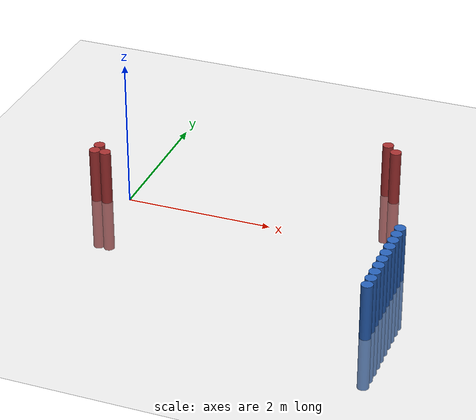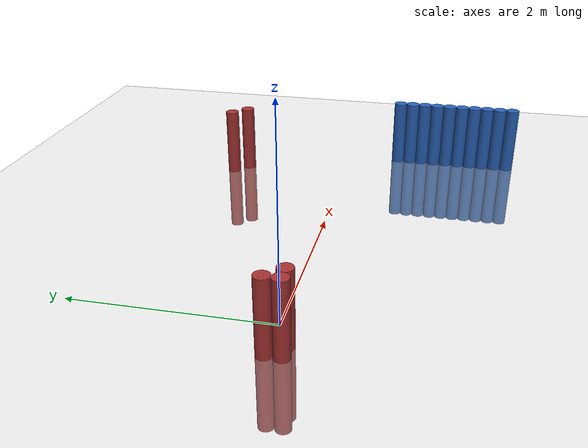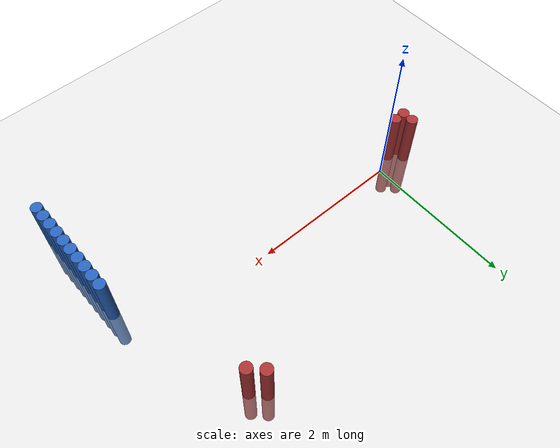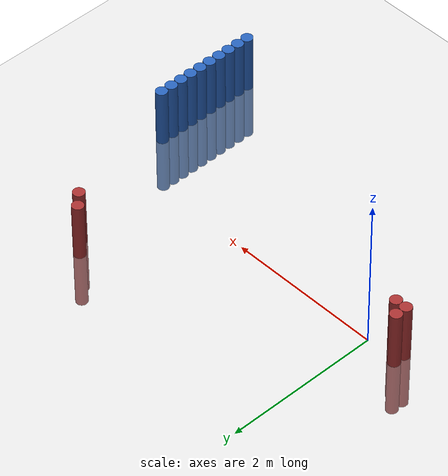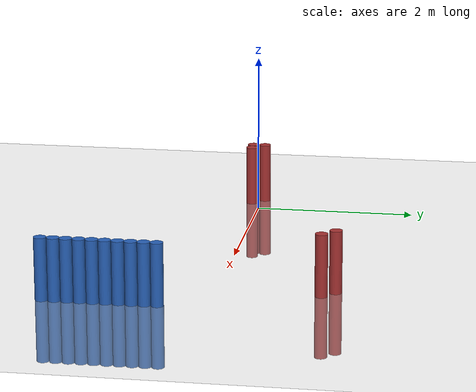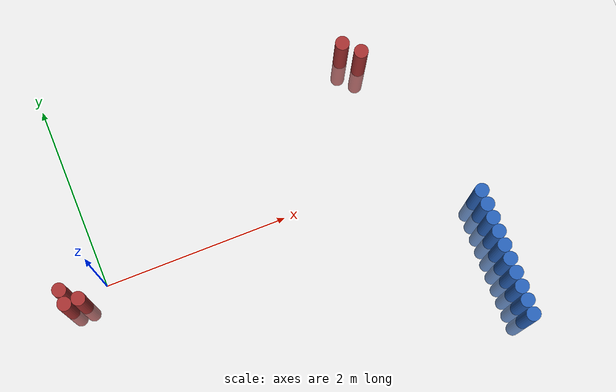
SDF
<sdf version="1.6">
 <world name="default">
  <model name="ground_plane">
   <static>1</static>
   <link name="link">
    <collision name="collision">
     <geometry><plane><normal>0 0 1</normal><size>100 100</size></plane></geometry>
     <surface><friction><ode><mu>100</mu><mu2>50</mu2></ode></friction></surface>
    </collision>
    <visual name="visual">
     <cast_shadows>0</cast_shadows>
     <geometry><plane><normal>0 0 1</normal><size>100 100</size></plane></geometry>
     <material>
      <script><uri>file://media/materials/scripts/gazebo.material</uri><name>Gazebo/Grey</name></script>
     </material>
    </visual>
   </link>
  </model>
  <model name="unit_cylinder_90">
   <static>1</static>
   <pose>3.925000 -1.775000 0.000000 0.000000 0.000000 0.000000</pose>
   <link name="link">
    <inertial>
     <mass>1</mass>
     <inertia><ixx>0.145833</ixx><ixy>0</ixy><ixz>0</ixz><iyy>0.145833</iyy><iyz>0</iyz><izz>0.125</izz></inertia>
    </inertial>
    <collision name="collision">
     <geometry><cylinder><radius>0.075000</radius><length>1.5</length></cylinder></geometry>
    </collision>
    <visual name="visual">
     <geometry><cylinder><radius>0.075000</radius><length>1.5</length></cylinder></geometry>
     <material>
      <ambient>0.152000 0.379000 0.720000 1</ambient>
      <diffuse>0.152000 0.379000 0.720000 1</diffuse>
     </material>
     <material>
      <script><name>Gazebo/Grey</name><uri>file://media/materials/scripts/gazebo.material</uri></script>
     </material>
    </visual>
   </link>
  </model>
  <model name="unit_cylinder_92">
   <static>1</static>
   <pose>3.925000 -1.625000 0.000000 0.000000 0.000000 0.000000</pose>
   <link name="link">
    <inertial>
     <mass>1</mass>
     <inertia><ixx>0.145833</ixx><ixy>0</ixy><ixz>0</ixz><iyy>0.145833</iyy><iyz>0</iyz><izz>0.125</izz></inertia>
    </inertial>
    <collision name="collision">
     <geometry><cylinder><radius>0.075000</radius><length>1.5</length></cylinder></geometry>
    </collision>
    <visual name="visual">
     <geometry><cylinder><radius>0.075000</radius><length>1.5</length></cylinder></geometry>
     <material>
      <ambient>0.152000 0.379000 0.720000 1</ambient>
      <diffuse>0.152000 0.379000 0.720000 1</diffuse>
     </material>
     <material>
      <script><name>Gazebo/Grey</name><uri>file://media/materials/scripts/gazebo.material</uri></script>
     </material>
    </visual>
   </link>
  </model>
  <model name="unit_cylinder_94">
   <static>1</static>
   <pose>3.925000 -1.475000 0.000000 0.000000 0.000000 0.000000</pose>
   <link name="link">
    <inertial>
     <mass>1</mass>
     <inertia><ixx>0.145833</ixx><ixy>0</ixy><ixz>0</ixz><iyy>0.145833</iyy><iyz>0</iyz><izz>0.125</izz></inertia>
    </inertial>
    <collision name="collision">
     <geometry><cylinder><radius>0.075000</radius><length>1.5</length></cylinder></geometry>
    </collision>
    <visual name="visual">
     <geometry><cylinder><radius>0.075000</radius><length>1.5</length></cylinder></geometry>
     <material>
      <ambient>0.152000 0.379000 0.720000 1</ambient>
      <diffuse>0.152000 0.379000 0.720000 1</diffuse>
     </material>
     <material>
      <script><name>Gazebo/Grey</name><uri>file://media/materials/scripts/gazebo.material</uri></script>
     </material>
    </visual>
   </link>
  </model>
  <model name="unit_cylinder_96">
   <static>1</static>
   <pose>3.925000 -1.325000 0.000000 0.000000 0.000000 0.000000</pose>
   <link name="link">
    <inertial>
     <mass>1</mass>
     <inertia><ixx>0.145833</ixx><ixy>0</ixy><ixz>0</ixz><iyy>0.145833</iyy><iyz>0</iyz><izz>0.125</izz></inertia>
    </inertial>
    <collision name="collision">
     <geometry><cylinder><radius>0.075000</radius><length>1.5</length></cylinder></geometry>
    </collision>
    <visual name="visual">
     <geometry><cylinder><radius>0.075000</radius><length>1.5</length></cylinder></geometry>
     <material>
      <ambient>0.152000 0.379000 0.720000 1</ambient>
      <diffuse>0.152000 0.379000 0.720000 1</diffuse>
     </material>
     <material>
      <script><name>Gazebo/Grey</name><uri>file://media/materials/scripts/gazebo.material</uri></script>
     </material>
    </visual>
   </link>
  </model>
  <model name="unit_cylinder_98">
   <static>1</static>
   <pose>3.925000 -1.175000 0.000000 0.000000 0.000000 0.000000</pose>
   <link name="link">
    <inertial>
     <mass>1</mass>
     <inertia><ixx>0.145833</ixx><ixy>0</ixy><ixz>0</ixz><iyy>0.145833</iyy><iyz>0</iyz><izz>0.125</izz></inertia>
    </inertial>
    <collision name="collision">
     <geometry><cylinder><radius>0.075000</radius><length>1.5</length></cylinder></geometry>
    </collision>
    <visual name="visual">
     <geometry><cylinder><radius>0.075000</radius><length>1.5</length></cylinder></geometry>
     <material>
      <ambient>0.152000 0.379000 0.720000 1</ambient>
      <diffuse>0.152000 0.379000 0.720000 1</diffuse>
     </material>
     <material>
      <script><name>Gazebo/Grey</name><uri>file://media/materials/scripts/gazebo.material</uri></script>
     </material>
    </visual>
   </link>
  </model>
  <model name="unit_cylinder_100">
   <static>1</static>
   <pose>3.925000 -1.025000 0.000000 0.000000 0.000000 0.000000</pose>
   <link name="link">
    <inertial>
     <mass>1</mass>
     <inertia><ixx>0.145833</ixx><ixy>0</ixy><ixz>0</ixz><iyy>0.145833</iyy><iyz>0</iyz><izz>0.125</izz></inertia>
    </inertial>
    <collision name="collision">
     <geometry><cylinder><radius>0.075000</radius><length>1.5</length></cylinder></geometry>
    </collision>
    <visual name="visual">
     <geometry><cylinder><radius>0.075000</radius><length>1.5</length></cylinder></geometry>
     <material>
      <ambient>0.152000 0.379000 0.720000 1</ambient>
      <diffuse>0.152000 0.379000 0.720000 1</diffuse>
     </material>
     <material>
      <script><name>Gazebo/Grey</name><uri>file://media/materials/scripts/gazebo.material</uri></script>
     </material>
    </visual>
   </link>
  </model>
  <model name="unit_cylinder_102">
   <static>1</static>
   <pose>3.925000 -0.875000 0.000000 0.000000 0.000000 0.000000</pose>
   <link name="link">
    <inertial>
     <mass>1</mass>
     <inertia><ixx>0.145833</ixx><ixy>0</ixy><ixz>0</ixz><iyy>0.145833</iyy><iyz>0</iyz><izz>0.125</izz></inertia>
    </inertial>
    <collision name="collision">
     <geometry><cylinder><radius>0.075000</radius><length>1.5</length></cylinder></geometry>
    </collision>
    <visual name="visual">
     <geometry><cylinder><radius>0.075000</radius><length>1.5</length></cylinder></geometry>
     <material>
      <ambient>0.152000 0.379000 0.720000 1</ambient>
      <diffuse>0.152000 0.379000 0.720000 1</diffuse>
     </material>
     <material>
      <script><name>Gazebo/Grey</name><uri>file://media/materials/scripts/gazebo.material</uri></script>
     </material>
    </visual>
   </link>
  </model>
  <model name="unit_cylinder_104">
   <static>1</static>
   <pose>3.925000 -0.725000 0.000000 0.000000 0.000000 0.000000</pose>
   <link name="link">
    <inertial>
     <mass>1</mass>
     <inertia><ixx>0.145833</ixx><ixy>0</ixy><ixz>0</ixz><iyy>0.145833</iyy><iyz>0</iyz><izz>0.125</izz></inertia>
    </inertial>
    <collision name="collision">
     <geometry><cylinder><radius>0.075000</radius><length>1.5</length></cylinder></geometry>
    </collision>
    <visual name="visual">
     <geometry><cylinder><radius>0.075000</radius><length>1.5</length></cylinder></geometry>
     <material>
      <ambient>0.152000 0.379000 0.720000 1</ambient>
      <diffuse>0.152000 0.379000 0.720000 1</diffuse>
     </material>
     <material>
      <script><name>Gazebo/Grey</name><uri>file://media/materials/scripts/gazebo.material</uri></script>
     </material>
    </visual>
   </link>
  </model>
  <model name="unit_cylinder_106">
   <static>1</static>
   <pose>3.925000 -0.575000 0.000000 0.000000 0.000000 0.000000</pose>
   <link name="link">
    <inertial>
     <mass>1</mass>
     <inertia><ixx>0.145833</ixx><ixy>0</ixy><ixz>0</ixz><iyy>0.145833</iyy><iyz>0</iyz><izz>0.125</izz></inertia>
    </inertial>
    <collision name="collision">
     <geometry><cylinder><radius>0.075000</radius><length>1.5</length></cylinder></geometry>
    </collision>
    <visual name="visual">
     <geometry><cylinder><radius>0.075000</radius><length>1.5</length></cylinder></geometry>
     <material>
      <ambient>0.152000 0.379000 0.720000 1</ambient>
      <diffuse>0.152000 0.379000 0.720000 1</diffuse>
     </material>
     <material>
      <script><name>Gazebo/Grey</name><uri>file://media/materials/scripts/gazebo.material</uri></script>
     </material>
    </visual>
   </link>
  </model>
  <model name="unit_cylinder_305">
   <static>1</static>
   <pose>-0.425000 -0.125000 0.000000 0.000000 0.000000 0.000000</pose>
   <link name="link">
    <inertial>
     <mass>1</mass>
     <inertia><ixx>0.145833</ixx><ixy>0</ixy><ixz>0</ixz><iyy>0.145833</iyy><iyz>0</iyz><izz>0.125</izz></inertia>
    </inertial>
    <collision name="collision">
     <geometry><cylinder><radius>0.075000</radius><length>1.5</length></cylinder></geometry>
    </collision>
    <visual name="visual">
     <geometry><cylinder><radius>0.075000</radius><length>1.5</length></cylinder></geometry>
     <material>
      <ambient>0.648000 0.192000 0.192000 1</ambient>
      <diffuse>0.648000 0.192000 0.192000 1</diffuse>
     </material>
     <material>
      <script><name>Gazebo/Grey</name><uri>file://media/materials/scripts/gazebo.material</uri></script>
     </material>
    </visual>
   </link>
  </model>
  <model name="unit_cylinder_306">
   <static>1</static>
   <pose>-0.425000 0.025000 0.000000 0.000000 0.000000 0.000000</pose>
   <link name="link">
    <inertial>
     <mass>1</mass>
     <inertia><ixx>0.145833</ixx><ixy>0</ixy><ixz>0</ixz><iyy>0.145833</iyy><iyz>0</iyz><izz>0.125</izz></inertia>
    </inertial>
    <collision name="collision">
     <geometry><cylinder><radius>0.075000</radius><length>1.5</length></cylinder></geometry>
    </collision>
    <visual name="visual">
     <geometry><cylinder><radius>0.075000</radius><length>1.5</length></cylinder></geometry>
     <material>
      <ambient>0.648000 0.192000 0.192000 1</ambient>
      <diffuse>0.648000 0.192000 0.192000 1</diffuse>
     </material>
     <material>
      <script><name>Gazebo/Grey</name><uri>file://media/materials/scripts/gazebo.material</uri></script>
     </material>
    </visual>
   </link>
  </model>
  <model name="unit_cylinder_307">
   <static>1</static>
   <pose>-0.275000 -0.125000 0.000000 0.000000 0.000000 0.000000</pose>
   <link name="link">
    <inertial>
     <mass>1</mass>
     <inertia><ixx>0.145833</ixx><ixy>0</ixy><ixz>0</ixz><iyy>0.145833</iyy><iyz>0</iyz><izz>0.125</izz></inertia>
    </inertial>
    <collision name="collision">
     <geometry><cylinder><radius>0.075000</radius><length>1.5</length></cylinder></geometry>
    </collision>
    <visual name="visual">
     <geometry><cylinder><radius>0.075000</radius><length>1.5</length></cylinder></geometry>
     <material>
      <ambient>0.648000 0.192000 0.192000 1</ambient>
      <diffuse>0.648000 0.192000 0.192000 1</diffuse>
     </material>
     <material>
      <script><name>Gazebo/Grey</name><uri>file://media/materials/scripts/gazebo.material</uri></script>
     </material>
    </visual>
   </link>
  </model>
  <model name="unit_cylinder_334">
   <static>1</static>
   <pose>3.175000 1.375000 0.000000 0.000000 0.000000 0.000000</pose>
   <link name="link">
    <inertial>
     <mass>1</mass>
     <inertia><ixx>0.145833</ixx><ixy>0</ixy><ixz>0</ixz><iyy>0.145833</iyy><iyz>0</iyz><izz>0.125</izz></inertia>
    </inertial>
    <collision name="collision">
     <geometry><cylinder><radius>0.075000</radius><length>1.5</length></cylinder></geometry>
    </collision>
    <visual name="visual">
     <geometry><cylinder><radius>0.075000</radius><length>1.5</length></cylinder></geometry>
     <material>
      <ambient>0.648000 0.192000 0.192000 1</ambient>
      <diffuse>0.648000 0.192000 0.192000 1</diffuse>
     </material>
     <material>
      <script><name>Gazebo/Grey</name><uri>file://media/materials/scripts/gazebo.material</uri></script>
     </material>
    </visual>
   </link>
  </model>
  <model name="unit_cylinder_337">
   <static>1</static>
   <pose>3.325000 1.225000 0.000000 0.000000 0.000000 0.000000</pose>
   <link name="link">
    <inertial>
     <mass>1</mass>
     <inertia><ixx>0.145833</ixx><ixy>0</ixy><ixz>0</ixz><iyy>0.145833</iyy><iyz>0</iyz><izz>0.125</izz></inertia>
    </inertial>
    <collision name="collision">
     <geometry><cylinder><radius>0.075000</radius><length>1.5</length></cylinder></geometry>
    </collision>
    <visual name="visual">
     <geometry><cylinder><radius>0.075000</radius><length>1.5</length></cylinder></geometry>
     <material>
      <ambient>0.648000 0.192000 0.192000 1</ambient>
      <diffuse>0.648000 0.192000 0.192000 1</diffuse>
     </material>
     <material>
      <script><name>Gazebo/Grey</name><uri>file://media/materials/scripts/gazebo.material</uri></script>
     </material>
    </visual>
   </link>
  </model>
  <model name="unit_cylinder_347">
   <static>1</static>
   <pose>3.925000 -1.925000 0.000000 0.000000 0.000000 0.000000</pose>
   <link name="link">
    <inertial>
     <mass>1</mass>
     <inertia><ixx>0.145833</ixx><ixy>0</ixy><ixz>0</ixz><iyy>0.145833</iyy><iyz>0</iyz><izz>0.125</izz></inertia>
    </inertial>
    <collision name="collision">
     <geometry><cylinder><radius>0.075000</radius><length>1.5</length></cylinder></geometry>
    </collision>
    <visual name="visual">
     <geometry><cylinder><radius>0.075000</radius><length>1.5</length></cylinder></geometry>
     <material>
      <ambient>0.152000 0.379000 0.720000 1</ambient>
      <diffuse>0.152000 0.379000 0.720000 1</diffuse>
     </material>
     <material>
      <script><name>Gazebo/Grey</name><uri>file://media/materials/scripts/gazebo.material</uri></script>
     </material>
    </visual>
   </link>
  </model>
  <model name="unit_cylinder_348">
   <static>1</static>
   <pose>3.925000 -1.775000 0.000000 0.000000 0.000000 0.000000</pose>
   <link name="link">
    <inertial>
     <mass>1</mass>
     <inertia><ixx>0.145833</ixx><ixy>0</ixy><ixz>0</ixz><iyy>0.145833</iyy><iyz>0</iyz><izz>0.125</izz></inertia>
    </inertial>
    <collision name="collision">
     <geometry><cylinder><radius>0.075000</radius><length>1.5</length></cylinder></geometry>
    </collision>
    <visual name="visual">
     <geometry><cylinder><radius>0.075000</radius><length>1.5</length></cylinder></geometry>
     <material>
      <ambient>0.152000 0.379000 0.720000 1</ambient>
      <diffuse>0.152000 0.379000 0.720000 1</diffuse>
     </material>
     <material>
      <script><name>Gazebo/Grey</name><uri>file://media/materials/scripts/gazebo.material</uri></script>
     </material>
    </visual>
   </link>
  </model>
  <model name="unit_cylinder_349">
   <static>1</static>
   <pose>3.925000 -1.625000 0.000000 0.000000 0.000000 0.000000</pose>
   <link name="link">
    <inertial>
     <mass>1</mass>
     <inertia><ixx>0.145833</ixx><ixy>0</ixy><ixz>0</ixz><iyy>0.145833</iyy><iyz>0</iyz><izz>0.125</izz></inertia>
    </inertial>
    <collision name="collision">
     <geometry><cylinder><radius>0.075000</radius><length>1.5</length></cylinder></geometry>
    </collision>
    <visual name="visual">
     <geometry><cylinder><radius>0.075000</radius><length>1.5</length></cylinder></geometry>
     <material>
      <ambient>0.152000 0.379000 0.720000 1</ambient>
      <diffuse>0.152000 0.379000 0.720000 1</diffuse>
     </material>
     <material>
      <script><name>Gazebo/Grey</name><uri>file://media/materials/scripts/gazebo.material</uri></script>
     </material>
    </visual>
   </link>
  </model>
  <model name="unit_cylinder_350">
   <static>1</static>
   <pose>3.925000 -1.475000 0.000000 0.000000 0.000000 0.000000</pose>
   <link name="link">
    <inertial>
     <mass>1</mass>
     <inertia><ixx>0.145833</ixx><ixy>0</ixy><ixz>0</ixz><iyy>0.145833</iyy><iyz>0</iyz><izz>0.125</izz></inertia>
    </inertial>
    <collision name="collision">
     <geometry><cylinder><radius>0.075000</radius><length>1.5</length></cylinder></geometry>
    </collision>
    <visual name="visual">
     <geometry><cylinder><radius>0.075000</radius><length>1.5</length></cylinder></geometry>
     <material>
      <ambient>0.152000 0.379000 0.720000 1</ambient>
      <diffuse>0.152000 0.379000 0.720000 1</diffuse>
     </material>
     <material>
      <script><name>Gazebo/Grey</name><uri>file://media/materials/scripts/gazebo.material</uri></script>
     </material>
    </visual>
   </link>
  </model>
  <model name="unit_cylinder_351">
   <static>1</static>
   <pose>3.925000 -1.325000 0.000000 0.000000 0.000000 0.000000</pose>
   <link name="link">
    <inertial>
     <mass>1</mass>
     <inertia><ixx>0.145833</ixx><ixy>0</ixy><ixz>0</ixz><iyy>0.145833</iyy><iyz>0</iyz><izz>0.125</izz></inertia>
    </inertial>
    <collision name="collision">
     <geometry><cylinder><radius>0.075000</radius><length>1.5</length></cylinder></geometry>
    </collision>
    <visual name="visual">
     <geometry><cylinder><radius>0.075000</radius><length>1.5</length></cylinder></geometry>
     <material>
      <ambient>0.152000 0.379000 0.720000 1</ambient>
      <diffuse>0.152000 0.379000 0.720000 1</diffuse>
     </material>
     <material>
      <script><name>Gazebo/Grey</name><uri>file://media/materials/scripts/gazebo.material</uri></script>
     </material>
    </visual>
   </link>
  </model>
  <model name="unit_cylinder_352">
   <static>1</static>
   <pose>3.925000 -1.175000 0.000000 0.000000 0.000000 0.000000</pose>
   <link name="link">
    <inertial>
     <mass>1</mass>
     <inertia><ixx>0.145833</ixx><ixy>0</ixy><ixz>0</ixz><iyy>0.145833</iyy><iyz>0</iyz><izz>0.125</izz></inertia>
    </inertial>
    <collision name="collision">
     <geometry><cylinder><radius>0.075000</radius><length>1.5</length></cylinder></geometry>
    </collision>
    <visual name="visual">
     <geometry><cylinder><radius>0.075000</radius><length>1.5</length></cylinder></geometry>
     <material>
      <ambient>0.152000 0.379000 0.720000 1</ambient>
      <diffuse>0.152000 0.379000 0.720000 1</diffuse>
     </material>
     <material>
      <script><name>Gazebo/Grey</name><uri>file://media/materials/scripts/gazebo.material</uri></script>
     </material>
    </visual>
   </link>
  </model>
  <model name="unit_cylinder_353">
   <static>1</static>
   <pose>3.925000 -1.025000 0.000000 0.000000 0.000000 0.000000</pose>
   <link name="link">
    <inertial>
     <mass>1</mass>
     <inertia><ixx>0.145833</ixx><ixy>0</ixy><ixz>0</ixz><iyy>0.145833</iyy><iyz>0</iyz><izz>0.125</izz></inertia>
    </inertial>
    <collision name="collision">
     <geometry><cylinder><radius>0.075000</radius><length>1.5</length></cylinder></geometry>
    </collision>
    <visual name="visual">
     <geometry><cylinder><radius>0.075000</radius><length>1.5</length></cylinder></geometry>
     <material>
      <ambient>0.152000 0.379000 0.720000 1</ambient>
      <diffuse>0.152000 0.379000 0.720000 1</diffuse>
     </material>
     <material>
      <script><name>Gazebo/Grey</name><uri>file://media/materials/scripts/gazebo.material</uri></script>
     </material>
    </visual>
   </link>
  </model>
  <model name="unit_cylinder_354">
   <static>1</static>
   <pose>3.925000 -0.875000 0.000000 0.000000 0.000000 0.000000</pose>
   <link name="link">
    <inertial>
     <mass>1</mass>
     <inertia><ixx>0.145833</ixx><ixy>0</ixy><ixz>0</ixz><iyy>0.145833</iyy><iyz>0</iyz><izz>0.125</izz></inertia>
    </inertial>
    <collision name="collision">
     <geometry><cylinder><radius>0.075000</radius><length>1.5</length></cylinder></geometry>
    </collision>
    <visual name="visual">
     <geometry><cylinder><radius>0.075000</radius><length>1.5</length></cylinder></geometry>
     <material>
      <ambient>0.152000 0.379000 0.720000 1</ambient>
      <diffuse>0.152000 0.379000 0.720000 1</diffuse>
     </material>
     <material>
      <script><name>Gazebo/Grey</name><uri>file://media/materials/scripts/gazebo.material</uri></script>
     </material>
    </visual>
   </link>
  </model>
  <model name="unit_cylinder_355">
   <static>1</static>
   <pose>3.925000 -0.725000 0.000000 0.000000 0.000000 0.000000</pose>
   <link name="link">
    <inertial>
     <mass>1</mass>
     <inertia><ixx>0.145833</ixx><ixy>0</ixy><ixz>0</ixz><iyy>0.145833</iyy><iyz>0</iyz><izz>0.125</izz></inertia>
    </inertial>
    <collision name="collision">
     <geometry><cylinder><radius>0.075000</radius><length>1.5</length></cylinder></geometry>
    </collision>
    <visual name="visual">
     <geometry><cylinder><radius>0.075000</radius><length>1.5</length></cylinder></geometry>
     <material>
      <ambient>0.152000 0.379000 0.720000 1</ambient>
      <diffuse>0.152000 0.379000 0.720000 1</diffuse>
     </material>
     <material>
      <script><name>Gazebo/Grey</name><uri>file://media/materials/scripts/gazebo.material</uri></script>
     </material>
    </visual>
   </link>
  </model>
  <model name="unit_cylinder_356">
   <static>1</static>
   <pose>3.925000 -0.575000 0.000000 0.000000 0.000000 0.000000</pose>
   <link name="link">
    <inertial>
     <mass>1</mass>
     <inertia><ixx>0.145833</ixx><ixy>0</ixy><ixz>0</ixz><iyy>0.145833</iyy><iyz>0</iyz><izz>0.125</izz></inertia>
    </inertial>
    <collision name="collision">
     <geometry><cylinder><radius>0.075000</radius><length>1.5</length></cylinder></geometry>
    </collision>
    <visual name="visual">
     <geometry><cylinder><radius>0.075000</radius><length>1.5</length></cylinder></geometry>
     <material>
      <ambient>0.152000 0.379000 0.720000 1</ambient>
      <diffuse>0.152000 0.379000 0.720000 1</diffuse>
     </material>
     <material>
      <script><name>Gazebo/Grey</name><uri>file://media/materials/scripts/gazebo.material</uri></script>
     </material>
    </visual>
   </link>
  </model>
 </world>
</sdf>
